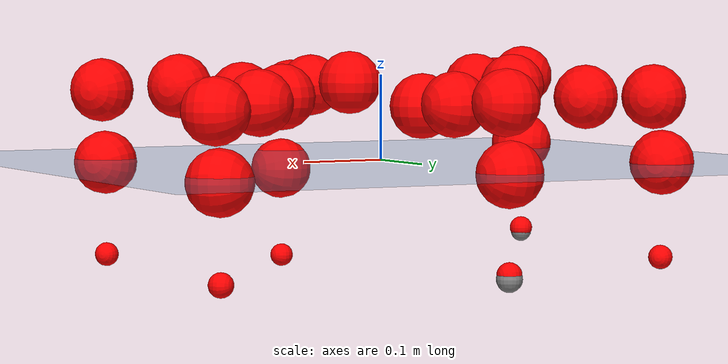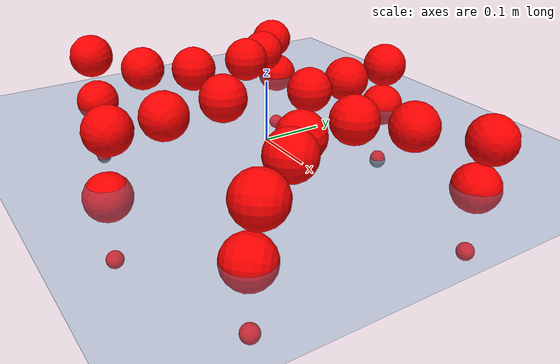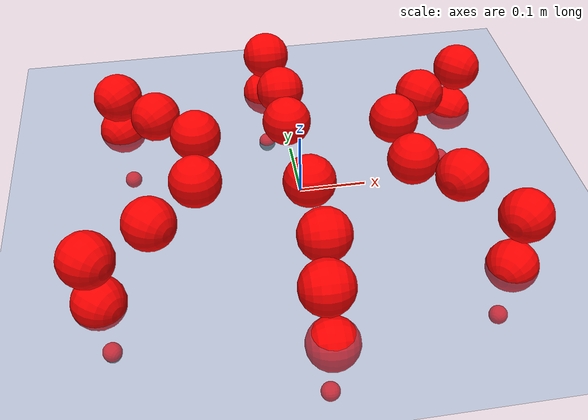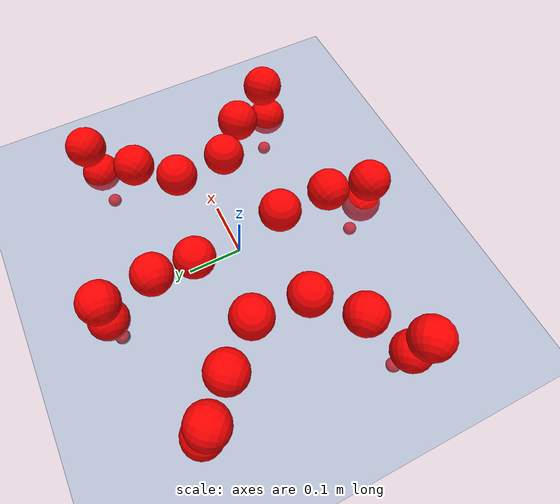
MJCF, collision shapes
<mujoco model="Golem">
  <compiler angle="radian" assetdir="assets" balanceinertia="true" inertiafromgeom="false"/>

  <option timestep="0.005" density="1.2" viscosity="2e-05"/>

  <size nkey="1"/>

  <visual>
    <quality shadowsize="8192"/>
    <map shadowclip="0.5"/>
  </visual>

  <default>
    <default class="/">
      <joint armature="0.01" damping="0.01" frictionloss="0.01"/>
      <geom contype="0" conaffinity="0" group="1" solref="-1000 -80"/>
      <site size="0.01 0.005 0.005" group="5"/>
      <general forcelimited="true" biastype="affine" gainprm="25" biasprm="0 -25 -0.5"/>
      <default class="visual">
        <geom type="mesh" group="2"/>
      </default>
      <default class="collision">
        <geom group="3"/>
      </default>
      <default class="foot">
        <geom size="0.01 0 0" condim="6" group="4" priority="1" solimp="0.015 1 0.01"/>
      </default>
      <default class="reward_collision_sphere">
        <geom group="5" rgba="1 0 0 1"/>
      </default>
    </default>
  </default>

  <asset>
    <texture type="skybox" colorspace="auto" name="//unnamed_texture_0" builtin="gradient" rgb1="0.95 0.95 0.95" rgb2="0.95 0.95 0.95" width="100" height="600"/>
    <texture type="2d" colorspace="auto" name="texplane" builtin="checker" rgb1="0.345 0.575 0.748" rgb2="0.345 0.575 0.748" markrgb="1 1 1" width="512" height="512"/>
    <material name="MatPlane" class="/" texture="texplane" texuniform="true" texrepeat="2 2" specular="0.9"/>
    <mesh name="body" class="/" file="body.stl" scale="0.001 0.001 0.001"/>
    <mesh name="coxa" class="/" file="coxa.stl" scale="0.001 0.001 0.001"/>
    <mesh name="femur" class="/" file="femur.stl" scale="0.001 0.001 0.001"/>
    <mesh name="tibia" class="/" file="tibia.stl" scale="0.001 0.001 0.001"/>
    <mesh name="tarsus" class="/" file="tarsus.stl" scale="0.001 0.001 0.001"/>
  </asset>

  <worldbody>
    <geom name="floor" class="/" size="100 100 0.125" type="plane" group="0" material="MatPlane"/>
    <light name="toplight_shadow" class="/" pos="0 0 5" dir="0.0990148 0.0990148 -0.990148" type="directional" ambient="0.04 0.04 0.04" diffuse="0.55 0.55 0.55" specular="0.12 0.12 0.12"/>
    <light name="toplight_fill" class="/" pos="0 0 5" dir="0.0990148 0.0990148 -0.990148" type="directional" castshadow="false" ambient="0.04 0.04 0.04" diffuse="0.3 0.3 0.3" specular="0.08 0.08 0.08"/>
    <body name="trunk" pos="0.00696153 -0.0011517 0.0141428" quat="1 8.28014e-05 0.000161304 4.62655e-05">
      <inertial pos="-0.00726783 -0.00135269 -0.0129118" quat="0.998733 -0.00077837 0.00194994 0.0502882" mass="2.61734" diaginertia="0.0129463 0.00369657 0.00703998"/>
      <joint name="//unnamed_joint_0" type="free"/>
      <geom name="//unnamed_geom_1" class="/" pos="0 0 0.0607684" quat="1 0 0 0" type="mesh" rgba="0.9 0.9 0.9 1" mesh="body"/>
      <site name="imu" class="/" pos="0.126325 0.00816989 0.0727365" size="0.00938033"/>
      <camera name="track" class="/" pos="0 -1.68827 0" quat="0.707107 0.707107 0 0" mode="trackcom"/>
      <camera name="ego_camera" class="/" pos="0.132659 0 0.0949506" quat="-0.5 -0.5 0.5 0.5"/>
      <body name="coxa_RR" pos="-0.18379 -0.0709099 0.0709665" quat="0.383369 -0.000237857 -0.00087856 -0.923595">
        <inertial pos="-0.000174373 0.0139107 -0.0019807" quat="0.999856 -0.00655698 -0.010447 0.0116222" mass="0.19948" diaginertia="0.0148098 0.00432743 0.00862975"/>
        <joint name="coxa_joint_RR" class="/" pos="0 0 0" axis="0.0447261 0.0645342 -0.996913" range="-3.12049 3.32817" armature="0.0131211" damping="0.0381611" frictionloss="0.00839609"/>
        <geom name="//unnamed_geom_2" class="/" type="mesh" rgba="0.2 0.2 0.2 1" mesh="coxa"/>
        <geom name="//unnamed_geom_3" class="reward_collision_sphere" size="0.0375213" pos="-0.0306137 0 0"/>
        <body name="femur_RR" pos="0.062987 0.000223398 -0.0067226" quat="0.500386 -0.499673 0.500575 0.499364">
          <inertial pos="0.00369801 -0.00794908 0.00789788" quat="0.999994 0.00102977 0.00179033 -0.00267155" mass="0.167487" diaginertia="0.0114157 0.00438539 0.00775134"/>
          <joint name="femur_joint_RR" class="/" pos="0 0 0" axis="-0.00179519 0.00521107 -0.999985" stiffness="0.0286215" range="-3.2213 3.39822" armature="0.0138704" damping="0" frictionloss="0.00473382"/>
          <geom name="//unnamed_geom_4" class="/" type="mesh" rgba="0.9 0.9 0.9 1" mesh="femur"/>
          <geom name="//unnamed_geom_5" class="reward_collision_sphere" size="0.0375213"/>
          <body name="tibia_RR" pos="-0.0125865 -0.100717 -0.00947875" quat="0.00276306 0.999993 0.00224208 0.00090463">
            <inertial pos="0.0118782 0.0086347 0.000606879" quat="0.99863 -0.0101152 0.0072218 0.0508292" mass="0.164287" diaginertia="0.0130328 0.00452523 0.00823641"/>
            <joint name="tibia_joint_RR" class="/" pos="0 0 0" axis="-0.00899787 0.0374567 0.999258" range="-2.86628 3.2615" armature="0.0136804" damping="0.0368864" frictionloss="0.00859111"/>
            <geom name="//unnamed_geom_6" class="/" type="mesh" rgba="0.2 0.2 0.2 1" mesh="tibia"/>
            <geom name="//unnamed_geom_7" class="reward_collision_sphere" size="0.0375213"/>
            <body name="tarsus_RR" pos="0.0853381 -0.00280917 0.000173623" quat="0.999998 -0.00108984 -0.000984454 0.00147025">
              <inertial pos="0.0594953 -0.01268 0.00993997" quat="0.507407 0.474719 0.507951 0.509084" mass="0.159962" diaginertia="0.0106584 0.00373958 0.00754111"/>
              <joint name="tarsus_joint_RR" class="/" pos="0 0 0" axis="0.00562707 0.0013333 0.999983" stiffness="0.067043" range="-3.18385 3.15423" armature="0.0040541" damping="0" frictionloss="0.00428196"/>
              <geom name="//unnamed_geom_8" class="/" type="mesh" rgba="0.9 0.9 0.9 1" mesh="tarsus"/>
              <geom name="foot_1" class="foot" size="0.0127656" pos="0.114291 0 0" quat="0 -0.707107 0 0.707107"/>
              <geom name="//unnamed_geom_10" class="reward_collision_sphere" size="0.0375213"/>
              <geom name="//unnamed_geom_11" class="reward_collision_sphere" size="0.0140705" pos="0.109699 0 0"/>
              <site name="foot_1" class="foot" pos="0.114291 0 0" quat="0 -0.707107 0 0.707107" size="0.00938033"/>
            </body>
          </body>
        </body>
      </body>
      <body name="coxa_RM" pos="-0.00560768 -0.108159 0.0747394" quat="0.712133 -1.08111e-05 -0.0016081 -0.702042">
        <inertial pos="0.0121723 -0.000491749 0.00658724" quat="0.99993 -0.000774339 0.011484 0.0026125" mass="0.196507" diaginertia="0.0137508 0.00515175 0.00870864"/>
        <joint name="coxa_joint_RM" class="/" pos="0 0 0" axis="-0.0126361 0.0125669 -0.999841" stiffness="0.0338981" range="-2.84361 3.12341" armature="0.0113964" damping="0" frictionloss="0.00985635"/>
        <geom name="//unnamed_geom_12" class="/" type="mesh" rgba="0.2 0.2 0.2 1" mesh="coxa"/>
        <geom name="//unnamed_geom_13" class="reward_collision_sphere" size="0.0375213" pos="-0.0306137 0 0"/>
        <body name="femur_RM" pos="0.0688563 0.00181528 -0.00568278" quat="0.499377 -0.496999 0.505212 0.498373">
          <inertial pos="-0.00693266 0.00627634 -0.00604265" quat="0.998116 0.0409995 -0.0177918 -0.042046" mass="0.144087" diaginertia="0.00942676 0.0041885 0.00675906"/>
          <joint name="femur_joint_RM" class="/" pos="0 0 0" axis="0.00118499 -0.001265 -0.999998" stiffness="0.0705521" range="-3.13978 3.12137" armature="0.00805596" damping="0.0189085" frictionloss="0.0122426"/>
          <geom name="//unnamed_geom_14" class="/" type="mesh" rgba="0.9 0.9 0.9 1" mesh="femur"/>
          <geom name="//unnamed_geom_15" class="reward_collision_sphere" size="0.0375213"/>
          <body name="tibia_RM" pos="0.00766681 -0.0815559 -0.0122442" quat="-0.0013247 0.999999 0.000107016 0.000116016">
            <inertial pos="0.0051848 -0.0155364 -0.000826429" quat="0.999831 -0.00652761 -0.00346417 0.0168429" mass="0.134579" diaginertia="0.00910313 0.00351407 0.00572801"/>
            <joint name="tibia_joint_RM" class="/" pos="0 0 0" axis="0.0261145 0.0328909 0.999118" range="-3.33441 3.45355" armature="0.00536964" damping="0.0745118" frictionloss="0.00895138"/>
            <geom name="//unnamed_geom_16" class="/" type="mesh" rgba="0.2 0.2 0.2 1" mesh="tibia"/>
            <geom name="//unnamed_geom_17" class="reward_collision_sphere" size="0.0375213"/>
            <body name="tarsus_RM" pos="0.0994112 0.0128131 -0.00794812" quat="0.999987 0.00242991 -0.00255265 0.00364521">
              <inertial pos="0.0550616 -0.0143991 -0.00566943" quat="0.498757 0.50288 0.497707 0.50064" mass="0.220228" diaginertia="0.0123468 0.00461144 0.00947687"/>
              <joint name="tarsus_joint_RM" class="/" pos="0 0 0" axis="0.0413756 -8.86535e-05 0.999144" stiffness="0.00770039" range="-3.14165 3.2044" armature="0.00546598" damping="0" frictionloss="0.00980564"/>
              <geom name="//unnamed_geom_18" class="/" type="mesh" rgba="0.9 0.9 0.9 1" mesh="tarsus"/>
              <geom name="foot_2" class="foot" size="0.00729313" pos="0.114291 0 0" quat="0 -0.707107 0 0.707107"/>
              <geom name="//unnamed_geom_20" class="reward_collision_sphere" size="0.0375213"/>
              <geom name="//unnamed_geom_21" class="reward_collision_sphere" size="0.0140705" pos="0.109699 0 0"/>
              <site name="foot_2" class="foot" pos="0.114291 0 0" quat="0 -0.707107 0 0.707107" size="0.00938033"/>
            </body>
          </body>
        </body>
      </body>
      <body name="coxa_RF" pos="0.172768 -0.0645717 0.0639251" quat="0.922736 -0.00119527 0.00318767 -0.385418">
        <inertial pos="0.0127644 -0.00394801 -0.0113576" quat="0.999151 -0.0371246 0.00165221 -0.0178039" mass="0.124453" diaginertia="0.00991487 0.0041265 0.00693825"/>
        <joint name="coxa_joint_RF" class="/" pos="0 0 0" axis="0.0280585 -0.0301471 -0.999152" stiffness="0.0152339" range="-2.96957 3.12644" armature="0.0150801" damping="0" frictionloss="0.00520631"/>
        <geom name="//unnamed_geom_22" class="/" type="mesh" rgba="0.2 0.2 0.2 1" mesh="coxa"/>
        <geom name="//unnamed_geom_23" class="reward_collision_sphere" size="0.0375213" pos="-0.0306137 0 0"/>
        <body name="femur_RF" pos="0.0470857 0.000688692 0.00929646" quat="0.503148 -0.495705 0.502706 0.498403">
          <inertial pos="0.00275431 0.00692139 -0.00229905" quat="0.999941 -0.00980331 0.00136046 -0.00457947" mass="0.225366" diaginertia="0.0109178 0.00541857 0.0101398"/>
          <joint name="femur_joint_RF" class="/" pos="0 0 0" axis="0.00604739 -0.00106667 -0.999981" stiffness="0.0730556" range="-3.26235 3.40975" armature="0.0159335" damping="0" frictionloss="0.0163251"/>
          <geom name="//unnamed_geom_24" class="/" type="mesh" rgba="0.9 0.9 0.9 1" mesh="femur"/>
          <geom name="//unnamed_geom_25" class="reward_collision_sphere" size="0.0375213"/>
          <body name="tibia_RF" pos="0.00518928 -0.105146 -0.0143089" quat="-9.85574e-05 1 -1.25932e-06 -0.000108136">
            <inertial pos="0.0129523 0.00395369 -0.0010491" quat="0.99999 0.00140556 -0.00148611 0.00399719" mass="0.180115" diaginertia="0.0140063 0.00474662 0.00864353"/>
            <joint name="tibia_joint_RF" class="/" pos="0 0 0" axis="-0.0368284 -0.0136651 0.999228" stiffness="0.0324068" range="-3.31877 3.11235" armature="0.00943836" damping="0.0679993" frictionloss="0.00542489"/>
            <geom name="//unnamed_geom_26" class="/" type="mesh" rgba="0.2 0.2 0.2 1" mesh="tibia"/>
            <geom name="//unnamed_geom_27" class="reward_collision_sphere" size="0.0375213"/>
            <body name="tarsus_RF" pos="0.0864896 0.00246393 0.0128424" quat="0.999987 -0.00484566 0.000829577 -0.000979138">
              <inertial pos="0.0734444 0.00838978 0.000339632" quat="0.501014 0.454455 0.558972 0.479588" mass="0.172354" diaginertia="0.0119795 0.00410925 0.00994289"/>
              <joint name="tarsus_joint_RF" class="/" pos="0 0 0" axis="0.039413 0.00832815 0.999188" range="-3.05628 3.15952" armature="0.0154837" damping="0.0112759" frictionloss="0.0150102"/>
              <geom name="//unnamed_geom_28" class="/" type="mesh" rgba="0.9 0.9 0.9 1" mesh="tarsus"/>
              <geom name="foot_3" class="foot" size="0.00919508" pos="0.114291 0 0" quat="0 -0.707107 0 0.707107"/>
              <geom name="//unnamed_geom_30" class="reward_collision_sphere" size="0.0375213"/>
              <geom name="//unnamed_geom_31" class="reward_collision_sphere" size="0.0140705" pos="0.109699 0 0"/>
              <site name="foot_3" class="foot" pos="0.114291 0 0" quat="0 -0.707107 0 0.707107" size="0.00938033"/>
            </body>
          </body>
        </body>
      </body>
      <body name="coxa_LR" pos="-0.176931 0.0728728 0.0718382" quat="0.382926 -0.00174255 0.000979761 0.923777">
        <inertial pos="-0.00599249 -0.000529573 0.000931558" quat="0.997597 0.0392297 0.0553066 -0.0142425" mass="0.155158" diaginertia="0.0108818 0.0032872 0.0074954"/>
        <joint name="coxa_joint_LR" class="/" pos="0 0 0" axis="0.0253139 0.0222389 -0.999432" range="-3.13972 2.99708" armature="0.00364554" damping="0" frictionloss="0.00670004"/>
        <geom name="//unnamed_geom_32" class="/" type="mesh" rgba="0.2 0.2 0.2 1" mesh="coxa"/>
        <geom name="//unnamed_geom_33" class="reward_collision_sphere" size="0.0375213" pos="-0.0306137 0 0"/>
        <body name="femur_LR" pos="0.0602439 -0.00914817 -0.0114369" quat="0.501226 -0.495645 0.501448 0.501656">
          <inertial pos="0.011889 0.013573 -0.0135615" quat="0.999999 0.000514781 -0.00155164 -0.000495344" mass="0.124144" diaginertia="0.00903339 0.00326052 0.00743642"/>
          <joint name="femur_joint_LR" class="/" pos="0 0 0" axis="0.00764197 -0.0702421 0.997501" stiffness="0.0374251" range="-2.94216 3.35125" armature="0.00198714" damping="0.0026374" frictionloss="0.0149128"/>
          <geom name="//unnamed_geom_34" class="/" type="mesh" rgba="0.9 0.9 0.9 1" mesh="femur"/>
          <geom name="//unnamed_geom_35" class="reward_collision_sphere" size="0.0375213"/>
          <body name="tibia_LR" pos="-0.001987 -0.0805501 0.00053198" quat="-0.000350848 1 -0.000182721 0.000283868">
            <inertial pos="-0.000666918 0.0135052 0.000647123" quat="0.999267 -0.00184018 -0.00817622 -0.0373591" mass="0.210568" diaginertia="0.0138029 0.00433811 0.0102222"/>
            <joint name="tibia_joint_LR" class="/" pos="0 0 0" axis="0.0314399 0.0559963 -0.997936" stiffness="0.0638384" range="-3.11962 3.39351" armature="0.00963326" damping="0" frictionloss="0.00477907"/>
            <geom name="//unnamed_geom_36" class="/" type="mesh" rgba="0.2 0.2 0.2 1" mesh="tibia"/>
            <geom name="//unnamed_geom_37" class="reward_collision_sphere" size="0.0375213"/>
            <body name="tarsus_LR" pos="0.075228 0.0123083 0.00897951" quat="0.999989 -0.00334769 -0.00335157 0.000476714">
              <inertial pos="0.067724 -0.00683823 0.0108705" quat="0.500081 0.50293 0.497573 0.499402" mass="0.185817" diaginertia="0.0111494 0.00386493 0.0074038"/>
              <joint name="tarsus_joint_LR" class="/" pos="0 0 0" axis="-0.000575323 0.00282595 -0.999996" stiffness="0.0256383" range="-2.9245 3.17974" armature="0.0147714" damping="0.018932" frictionloss="0.00967688"/>
              <geom name="//unnamed_geom_38" class="/" type="mesh" rgba="0.9 0.9 0.9 1" mesh="tarsus"/>
              <geom name="foot_4" class="foot" size="0.00953757" pos="0.114291 0 0" quat="0.707107 0 -0.707107 0"/>
              <geom name="//unnamed_geom_40" class="reward_collision_sphere" size="0.0375213"/>
              <geom name="//unnamed_geom_41" class="reward_collision_sphere" size="0.0140705" pos="0.109699 0 0"/>
              <site name="foot_4" class="foot" pos="0.114291 0 0" quat="0.707107 0 -0.707107 0" size="0.00938033"/>
            </body>
          </body>
        </body>
      </body>
      <body name="coxa_LM" pos="-0.013774 0.120097 0.0519602" quat="0.707159 -0.000155727 2.42501e-05 0.707054">
        <inertial pos="-0.00905265 -0.00557605 -0.00621479" quat="0.999245 -0.0132778 0.0227444 -0.0285639" mass="0.19234" diaginertia="0.0096185 0.00472736 0.0073815"/>
        <joint name="coxa_joint_LM" class="/" pos="0 0 0" axis="0.0631824 -0.0139759 -0.997904" stiffness="0.0241905" range="-3.27834 2.84462" armature="0.009376" damping="0.0141434" frictionloss="0.00921422"/>
        <geom name="//unnamed_geom_42" class="/" type="mesh" rgba="0.2 0.2 0.2 1" mesh="coxa"/>
        <geom name="//unnamed_geom_43" class="reward_collision_sphere" size="0.0375213" pos="-0.0306137 0 0"/>
        <body name="femur_LM" pos="0.0461323 -0.000485945 0.00425227" quat="0.496848 -0.502494 0.497101 0.50352">
          <inertial pos="-0.0103364 0.00285338 0.00973245" quat="1 5.69573e-05 -2.45301e-05 -2.87389e-05" mass="0.117901" diaginertia="0.00997739 0.00373604 0.00572848"/>
          <joint name="femur_joint_LM" class="/" pos="0 0 0" axis="0.0357812 0.0405731 0.998536" range="-2.87426 3.40232" armature="0.00708416" damping="0" frictionloss="0.00478588"/>
          <geom name="//unnamed_geom_44" class="/" type="mesh" rgba="0.9 0.9 0.9 1" mesh="femur"/>
          <geom name="//unnamed_geom_45" class="reward_collision_sphere" size="0.0375213"/>
          <body name="tibia_LM" pos="-0.00527317 -0.095505 0.00958982" quat="-5.24152e-06 0.999997 -0.00140154 -0.00211973">
            <inertial pos="-0.00972497 -0.00806364 -0.000286564" quat="0.999558 0.00921035 -0.0216084 0.0182309" mass="0.135436" diaginertia="0.00984991 0.00453 0.00614691"/>
            <joint name="tibia_joint_LM" class="/" pos="0 0 0" axis="0.0482982 -0.00477532 -0.998822" stiffness="0.0785257" range="-3.12574 3.11744" armature="0.015334" damping="0.0398373" frictionloss="0.00950802"/>
            <geom name="//unnamed_geom_46" class="/" type="mesh" rgba="0.2 0.2 0.2 1" mesh="tibia"/>
            <geom name="//unnamed_geom_47" class="reward_collision_sphere" size="0.0375213"/>
            <body name="tarsus_LM" pos="0.0783764 0.00303822 -0.0034554" quat="1 7.66089e-06 0.000151266 -8.13455e-05">
              <inertial pos="0.0575384 0.00166595 -0.0113371" quat="0.517581 0.510274 0.502148 0.468591" mass="0.178105" diaginertia="0.0129648 0.00365005 0.00759784"/>
              <joint name="tarsus_joint_LM" class="/" pos="0 0 0" axis="0.00197379 0.00252398 -0.999995" stiffness="0.0486348" range="-3.03207 3.13275" armature="0.0107309" damping="0" frictionloss="0.00901081"/>
              <geom name="//unnamed_geom_48" class="/" type="mesh" rgba="0.9 0.9 0.9 1" mesh="tarsus"/>
              <geom name="foot_5" class="foot" size="0.0147629" pos="0.114291 0 0" quat="0.707107 0 -0.707107 0"/>
              <geom name="//unnamed_geom_50" class="reward_collision_sphere" size="0.0375213"/>
              <geom name="//unnamed_geom_51" class="reward_collision_sphere" size="0.0140705" pos="0.109699 0 0"/>
              <site name="foot_5" class="foot" pos="0.114291 0 0" quat="0.707107 0 -0.707107 0" size="0.00938033"/>
            </body>
          </body>
        </body>
      </body>
      <body name="coxa_LF" pos="0.167788 0.0762066 0.0637975" quat="0.921635 -0.000837734 0.00324545 0.388044">
        <inertial pos="-0.000294511 -0.000329983 -0.011317" quat="0.999733 -0.00545531 0.0147774 -0.0168786" mass="0.180361" diaginertia="0.0105958 0.00554735 0.00822361"/>
        <joint name="coxa_joint_LF" class="/" pos="0 0 0" axis="-0.0232689 -0.0545546 -0.99824" stiffness="0.0203189" range="-3.20561 3.0961" armature="0.00849102" damping="0" frictionloss="0.0147896"/>
        <geom name="//unnamed_geom_52" class="/" type="mesh" rgba="0.2 0.2 0.2 1" mesh="coxa"/>
        <geom name="//unnamed_geom_53" class="reward_collision_sphere" size="0.0375213" pos="-0.0306137 0 0"/>
        <body name="femur_LF" pos="0.0546836 0.00266031 -0.00313198" quat="0.499626 -0.497454 0.501602 0.501307">
          <inertial pos="0.00137909 -0.00115695 -0.013323" quat="0.998805 -0.036503 -0.0234187 -0.0225115" mass="0.130781" diaginertia="0.0124119 0.00446177 0.00772218"/>
          <joint name="femur_joint_LF" class="/" pos="0 0 0" axis="0.0410883 0.0348496 0.998548" stiffness="0.0078278" range="-3.18398 3.11669" armature="0.00931754" damping="0.00443402" frictionloss="0.00356289"/>
          <geom name="//unnamed_geom_54" class="/" type="mesh" rgba="0.9 0.9 0.9 1" mesh="femur"/>
          <geom name="//unnamed_geom_55" class="reward_collision_sphere" size="0.0375213"/>
          <body name="tibia_LF" pos="0.00387108 -0.10677 -0.0116506" quat="0.00662392 0.999976 -0.000811963 -0.00209895">
            <inertial pos="-0.0030001 0.00170388 0.0110073" quat="0.99765 -0.0263591 -0.0174028 0.0608063" mass="0.147467" diaginertia="0.00877327 0.00415535 0.00752558"/>
            <joint name="tibia_joint_LF" class="/" pos="0 0 0" axis="-0.00240702 0.00398819 -0.999989" stiffness="0.0470455" range="-3.4494 2.999" armature="0.0106917" damping="0" frictionloss="0.00918985"/>
            <geom name="//unnamed_geom_56" class="/" type="mesh" rgba="0.2 0.2 0.2 1" mesh="tibia"/>
            <geom name="//unnamed_geom_57" class="reward_collision_sphere" size="0.0375213"/>
            <body name="tarsus_LF" pos="0.0769288 -0.0116834 -0.000272646" quat="0.999993 0.00283754 0.00201872 -0.00153716">
              <inertial pos="0.075688 0.00551511 8.80899e-05" quat="0.501984 0.496876 0.502931 0.498183" mass="0.205852" diaginertia="0.0137005 0.00536198 0.00717837"/>
              <joint name="tarsus_joint_LF" class="/" pos="0 0 0" axis="0.047219 0.0408314 -0.99805" stiffness="0.0539955" range="-3.15943 3.36875" armature="0.00288189" damping="0" frictionloss="0.00231143"/>
              <geom name="//unnamed_geom_58" class="/" type="mesh" rgba="0.9 0.9 0.9 1" mesh="tarsus"/>
              <geom name="foot_6" class="foot" size="0.00781429" pos="0.114291 0 0" quat="0.707107 0 -0.707107 0"/>
              <geom name="//unnamed_geom_60" class="reward_collision_sphere" size="0.0375213"/>
              <geom name="//unnamed_geom_61" class="reward_collision_sphere" size="0.0140705" pos="0.109699 0 0"/>
              <site name="foot_6" class="foot" pos="0.114291 0 0" quat="0.707107 0 -0.707107 0" size="0.00938033"/>
            </body>
          </body>
        </body>
      </body>
    </body>
  </worldbody>

  <contact>
    <pair class="/" geom1="floor" geom2="foot_1" name="//unnamed_contact_0"/>
    <pair class="/" geom1="floor" geom2="foot_2" name="//unnamed_contact_1"/>
    <pair class="/" geom1="floor" geom2="foot_3" name="//unnamed_contact_2"/>
    <pair class="/" geom1="floor" geom2="foot_4" name="//unnamed_contact_3"/>
    <pair class="/" geom1="floor" geom2="foot_5" name="//unnamed_contact_4"/>
    <pair class="/" geom1="floor" geom2="foot_6" name="//unnamed_contact_5"/>
  </contact>

  <actuator>
    <general name="coxa_joint_RR" class="/" joint="coxa_joint_RR" forcerange="-4.54462 4.54462" gainprm="21.0228" biasprm="0 -21.0228 -0.442333"/>
    <general name="femur_joint_RR" class="/" joint="femur_joint_RR" forcerange="-4.18347 4.18347" gainprm="21.0228" biasprm="0 -21.0228 -0.442333"/>
    <general name="tibia_joint_RR" class="/" joint="tibia_joint_RR" forcerange="-9.61228 9.61228" gainprm="21.0228" biasprm="0 -21.0228 -0.442333"/>
    <general name="tarsus_joint_RR" class="/" joint="tarsus_joint_RR" forcerange="-9.80469 9.80469" gainprm="21.0228" biasprm="0 -21.0228 -0.442333"/>
    <general name="coxa_joint_RM" class="/" joint="coxa_joint_RM" forcerange="-10.2554 10.2554" gainprm="21.0228" biasprm="0 -21.0228 -0.442333"/>
    <general name="femur_joint_RM" class="/" joint="femur_joint_RM" forcerange="-6.04317 6.04317" gainprm="21.0228" biasprm="0 -21.0228 -0.442333"/>
    <general name="tibia_joint_RM" class="/" joint="tibia_joint_RM" forcerange="-6.76047 6.76047" gainprm="21.0228" biasprm="0 -21.0228 -0.442333"/>
    <general name="tarsus_joint_RM" class="/" joint="tarsus_joint_RM" forcerange="-7.04713 7.04713" gainprm="21.0228" biasprm="0 -21.0228 -0.442333"/>
    <general name="coxa_joint_RF" class="/" joint="coxa_joint_RF" forcerange="-6.41771 6.41771" gainprm="21.0228" biasprm="0 -21.0228 -0.442333"/>
    <general name="femur_joint_RF" class="/" joint="femur_joint_RF" forcerange="-2.90963 2.90963" gainprm="21.0228" biasprm="0 -21.0228 -0.442333"/>
    <general name="tibia_joint_RF" class="/" joint="tibia_joint_RF" forcerange="-3.35726 3.35726" gainprm="21.0228" biasprm="0 -21.0228 -0.442333"/>
    <general name="tarsus_joint_RF" class="/" joint="tarsus_joint_RF" forcerange="-3.56063 3.56063" gainprm="21.0228" biasprm="0 -21.0228 -0.442333"/>
    <general name="coxa_joint_LR" class="/" joint="coxa_joint_LR" forcerange="-7.12603 7.12603" gainprm="21.0228" biasprm="0 -21.0228 -0.442333"/>
    <general name="femur_joint_LR" class="/" joint="femur_joint_LR" forcerange="-6.91172 6.91172" gainprm="21.0228" biasprm="0 -21.0228 -0.442333"/>
    <general name="tibia_joint_LR" class="/" joint="tibia_joint_LR" forcerange="-3.01705 3.01705" gainprm="21.0228" biasprm="0 -21.0228 -0.442333"/>
    <general name="tarsus_joint_LR" class="/" joint="tarsus_joint_LR" forcerange="-3.35952 3.35952" gainprm="21.0228" biasprm="0 -21.0228 -0.442333"/>
    <general name="coxa_joint_LM" class="/" joint="coxa_joint_LM" forcerange="-6.6243 6.6243" gainprm="21.0228" biasprm="0 -21.0228 -0.442333"/>
    <general name="femur_joint_LM" class="/" joint="femur_joint_LM" forcerange="-7.34794 7.34794" gainprm="21.0228" biasprm="0 -21.0228 -0.442333"/>
    <general name="tibia_joint_LM" class="/" joint="tibia_joint_LM" forcerange="-7.02332 7.02332" gainprm="21.0228" biasprm="0 -21.0228 -0.442333"/>
    <general name="tarsus_joint_LM" class="/" joint="tarsus_joint_LM" forcerange="-8.44292 8.44292" gainprm="21.0228" biasprm="0 -21.0228 -0.442333"/>
    <general name="coxa_joint_LF" class="/" joint="coxa_joint_LF" forcerange="-6.58714 6.58714" gainprm="21.0228" biasprm="0 -21.0228 -0.442333"/>
    <general name="femur_joint_LF" class="/" joint="femur_joint_LF" forcerange="-3.63863 3.63863" gainprm="21.0228" biasprm="0 -21.0228 -0.442333"/>
    <general name="tibia_joint_LF" class="/" joint="tibia_joint_LF" forcerange="-3.83005 3.83005" gainprm="21.0228" biasprm="0 -21.0228 -0.442333"/>
    <general name="tarsus_joint_LF" class="/" joint="tarsus_joint_LF" forcerange="-6.38201 6.38201" gainprm="21.0228" biasprm="0 -21.0228 -0.442333"/>
  </actuator>

  <sensor>
    <gyro site="imu" name="imu_angular_velocity"/>
    <velocimeter site="imu" name="imu_linear_velocity"/>
    <framelinvel objtype="site" objname="foot_1" name="foot_1_global_linear_velocity"/>
    <framelinvel objtype="site" objname="foot_2" name="foot_2_global_linear_velocity"/>
    <framelinvel objtype="site" objname="foot_3" name="foot_3_global_linear_velocity"/>
    <framelinvel objtype="site" objname="foot_4" name="foot_4_global_linear_velocity"/>
    <framelinvel objtype="site" objname="foot_5" name="foot_5_global_linear_velocity"/>
    <framelinvel objtype="site" objname="foot_6" name="foot_6_global_linear_velocity"/>
  </sensor>

  <keyframe>
    <key name="home" qpos="0 0 0.1457 1 0 0 0 0 0 0 0 0 0 0 0 0 0 0 0 0 0 0 0 0 0 0 0 0 0 0 0"/>
  </keyframe>
</mujoco>
